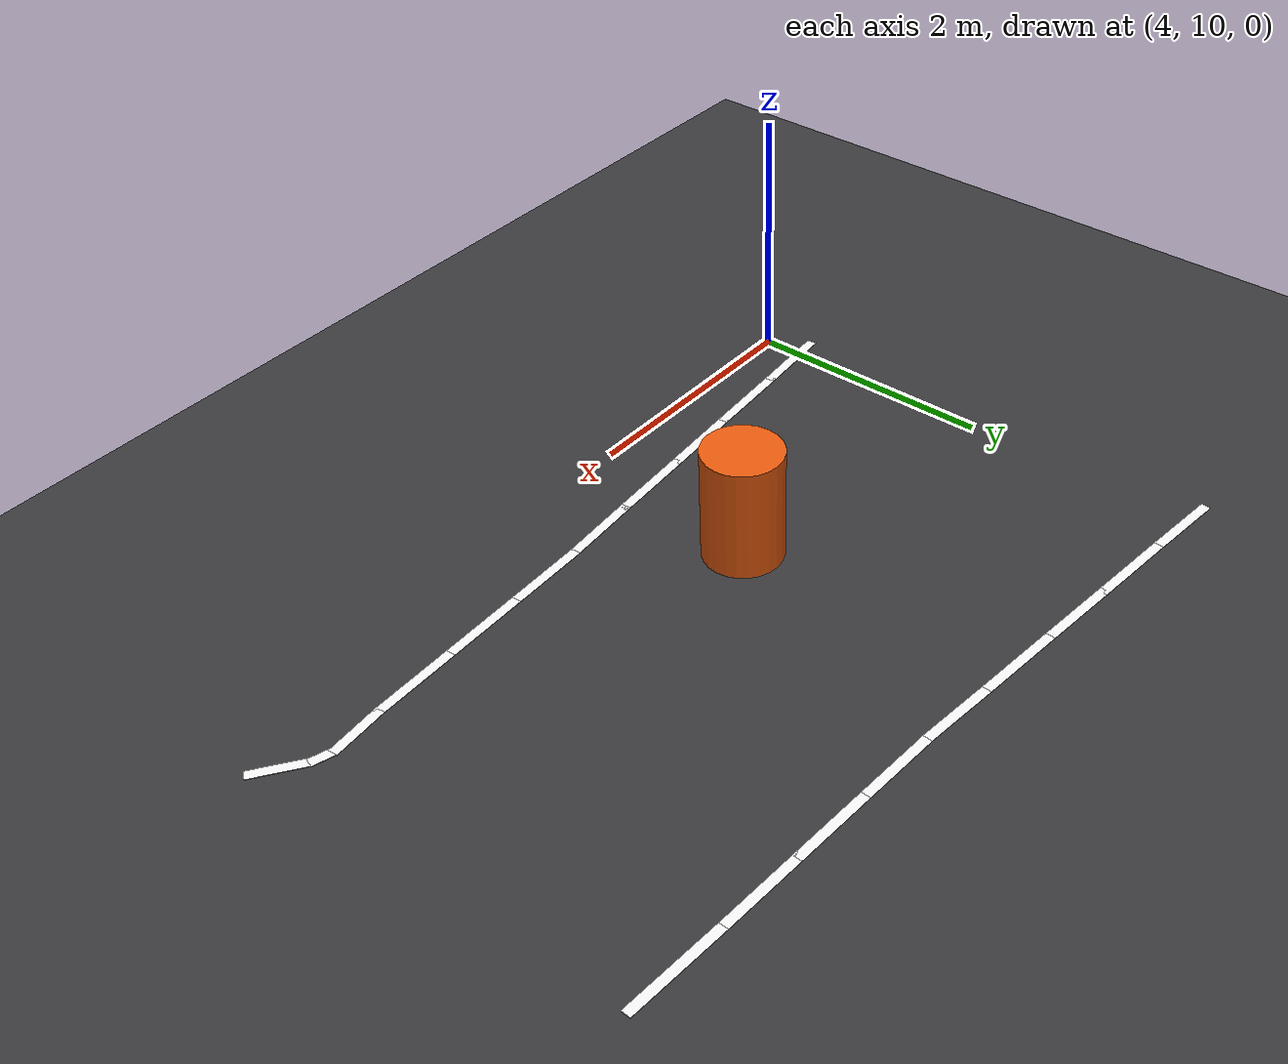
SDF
<sdf version="1.9">
 <world name="igvc_course">
  <model name="ground">
   <static>true</static>
   <pose>1.1853 1.2982 -0.05 0 0 0</pose>
   <link name="link">
    <collision name="collision">
     <geometry><box><size>39.54 33.62 0.1</size></box></geometry>
     <surface><friction><ode><mu>1.0</mu><mu2>1.0</mu2></ode></friction></surface>
    </collision>
    <visual name="visual">
     <geometry><box><size>39.54 33.62 0.1</size></box></geometry>
     <material><ambient>0.18 0.18 0.19 1</ambient><diffuse>0.22 0.22 0.23 1</diffuse></material>
    </visual>
   </link>
  </model>
  <model name="lane_left_37">
   <static>true</static>
   <pose>4.1204 13.8952 0.0025 0 0 -0.09066</pose>
   <link name="link">
    <visual name="visual">
     <geometry><box><size>0.6615 0.0762 0.0050</size></box></geometry>
     <material>
      <ambient>0.95 0.95 0.95 1</ambient>
      <diffuse>0.95 0.95 0.95 1</diffuse>
      <specular>0.1 0.1 0.1 1</specular>
      <emissive>0.55 0.55 0.55 1</emissive>
     </material>
    </visual>
   </link>
  </model>
  <model name="lane_left_38">
   <static>true</static>
   <pose>4.7696 13.8388 0.0025 0 0 -0.08314</pose>
   <link name="link">
    <visual name="visual">
     <geometry><box><size>0.7178 0.0762 0.0050</size></box></geometry>
     <material>
      <ambient>0.95 0.95 0.95 1</ambient>
      <diffuse>0.95 0.95 0.95 1</diffuse>
      <specular>0.1 0.1 0.1 1</specular>
      <emissive>0.55 0.55 0.55 1</emissive>
     </material>
    </visual>
   </link>
  </model>
  <model name="lane_left_39">
   <static>true</static>
   <pose>5.4328 13.7823 0.0025 0 0 -0.08674</pose>
   <link name="link">
    <visual name="visual">
     <geometry><box><size>0.6897 0.0762 0.0050</size></box></geometry>
     <material>
      <ambient>0.95 0.95 0.95 1</ambient>
      <diffuse>0.95 0.95 0.95 1</diffuse>
      <specular>0.1 0.1 0.1 1</specular>
      <emissive>0.55 0.55 0.55 1</emissive>
     </material>
    </visual>
   </link>
  </model>
  <model name="lane_left_40">
   <static>true</static>
   <pose>6.0960 13.7259 0.0025 0 0 -0.08314</pose>
   <link name="link">
    <visual name="visual">
     <geometry><box><size>0.7178 0.0762 0.0050</size></box></geometry>
     <material>
      <ambient>0.95 0.95 0.95 1</ambient>
      <diffuse>0.95 0.95 0.95 1</diffuse>
      <specular>0.1 0.1 0.1 1</specular>
      <emissive>0.55 0.55 0.55 1</emissive>
     </material>
    </visual>
   </link>
  </model>
  <model name="lane_left_41">
   <static>true</static>
   <pose>6.7451 13.6694 0.0025 0 0 -0.09066</pose>
   <link name="link">
    <visual name="visual">
     <geometry><box><size>0.6615 0.0762 0.0050</size></box></geometry>
     <material>
      <ambient>0.95 0.95 0.95 1</ambient>
      <diffuse>0.95 0.95 0.95 1</diffuse>
      <specular>0.1 0.1 0.1 1</specular>
      <emissive>0.55 0.55 0.55 1</emissive>
     </material>
    </visual>
   </link>
  </model>
  <model name="lane_left_42">
   <static>true</static>
   <pose>7.3801 13.6271 0.0025 0 0 -0.04345</pose>
   <link name="link">
    <visual name="visual">
     <geometry><box><size>0.6878 0.0762 0.0050</size></box></geometry>
     <material>
      <ambient>0.95 0.95 0.95 1</ambient>
      <diffuse>0.95 0.95 0.95 1</diffuse>
      <specular>0.1 0.1 0.1 1</specular>
      <emissive>0.55 0.55 0.55 1</emissive>
     </material>
    </visual>
   </link>
  </model>
  <model name="lane_left_43">
   <static>true</static>
   <pose>8.0433 13.5989 0.0025 0 0 -0.04164</pose>
   <link name="link">
    <visual name="visual">
     <geometry><box><size>0.7160 0.0762 0.0050</size></box></geometry>
     <material>
      <ambient>0.95 0.95 0.95 1</ambient>
      <diffuse>0.95 0.95 0.95 1</diffuse>
      <specular>0.1 0.1 0.1 1</specular>
      <emissive>0.55 0.55 0.55 1</emissive>
     </material>
    </visual>
   </link>
  </model>
  <model name="lane_left_44">
   <static>true</static>
   <pose>8.7207 13.5707 0.0025 0 0 -0.04164</pose>
   <link name="link">
    <visual name="visual">
     <geometry><box><size>0.7160 0.0762 0.0050</size></box></geometry>
     <material>
      <ambient>0.95 0.95 0.95 1</ambient>
      <diffuse>0.95 0.95 0.95 1</diffuse>
      <specular>0.1 0.1 0.1 1</specular>
      <emissive>0.55 0.55 0.55 1</emissive>
     </material>
    </visual>
   </link>
  </model>
  <model name="lane_left_45">
   <static>true</static>
   <pose>9.4703 13.5353 0.0025 0 0 -0.05167</pose>
   <link name="link">
    <visual name="visual">
     <geometry><box><size>0.8610 0.0762 0.0050</size></box></geometry>
     <material>
      <ambient>0.95 0.95 0.95 1</ambient>
      <diffuse>0.95 0.95 0.95 1</diffuse>
      <specular>0.1 0.1 0.1 1</specular>
      <emissive>0.55 0.55 0.55 1</emissive>
     </material>
    </visual>
   </link>
  </model>
  <model name="lane_right_37">
   <static>true</static>
   <pose>4.1204 10.3195 0.0025 0 0 0.09066</pose>
   <link name="link">
    <visual name="visual">
     <geometry><box><size>0.6615 0.0762 0.0050</size></box></geometry>
     <material>
      <ambient>0.95 0.95 0.95 1</ambient>
      <diffuse>0.95 0.95 0.95 1</diffuse>
      <specular>0.1 0.1 0.1 1</specular>
      <emissive>0.55 0.55 0.55 1</emissive>
     </material>
    </visual>
   </link>
  </model>
  <model name="lane_right_38">
   <static>true</static>
   <pose>4.7696 10.3759 0.0025 0 0 0.08314</pose>
   <link name="link">
    <visual name="visual">
     <geometry><box><size>0.7178 0.0762 0.0050</size></box></geometry>
     <material>
      <ambient>0.95 0.95 0.95 1</ambient>
      <diffuse>0.95 0.95 0.95 1</diffuse>
      <specular>0.1 0.1 0.1 1</specular>
      <emissive>0.55 0.55 0.55 1</emissive>
     </material>
    </visual>
   </link>
  </model>
  <model name="lane_right_39">
   <static>true</static>
   <pose>5.4328 10.4323 0.0025 0 0 0.08674</pose>
   <link name="link">
    <visual name="visual">
     <geometry><box><size>0.6897 0.0762 0.0050</size></box></geometry>
     <material>
      <ambient>0.95 0.95 0.95 1</ambient>
      <diffuse>0.95 0.95 0.95 1</diffuse>
      <specular>0.1 0.1 0.1 1</specular>
      <emissive>0.55 0.55 0.55 1</emissive>
     </material>
    </visual>
   </link>
  </model>
  <model name="lane_right_40">
   <static>true</static>
   <pose>6.0960 10.4888 0.0025 0 0 0.08314</pose>
   <link name="link">
    <visual name="visual">
     <geometry><box><size>0.7178 0.0762 0.0050</size></box></geometry>
     <material>
      <ambient>0.95 0.95 0.95 1</ambient>
      <diffuse>0.95 0.95 0.95 1</diffuse>
      <specular>0.1 0.1 0.1 1</specular>
      <emissive>0.55 0.55 0.55 1</emissive>
     </material>
    </visual>
   </link>
  </model>
  <model name="lane_right_41">
   <static>true</static>
   <pose>6.7451 10.5452 0.0025 0 0 0.09066</pose>
   <link name="link">
    <visual name="visual">
     <geometry><box><size>0.6615 0.0762 0.0050</size></box></geometry>
     <material>
      <ambient>0.95 0.95 0.95 1</ambient>
      <diffuse>0.95 0.95 0.95 1</diffuse>
      <specular>0.1 0.1 0.1 1</specular>
      <emissive>0.55 0.55 0.55 1</emissive>
     </material>
    </visual>
   </link>
  </model>
  <model name="lane_right_42">
   <static>true</static>
   <pose>7.3801 10.5876 0.0025 0 0 0.04345</pose>
   <link name="link">
    <visual name="visual">
     <geometry><box><size>0.6878 0.0762 0.0050</size></box></geometry>
     <material>
      <ambient>0.95 0.95 0.95 1</ambient>
      <diffuse>0.95 0.95 0.95 1</diffuse>
      <specular>0.1 0.1 0.1 1</specular>
      <emissive>0.55 0.55 0.55 1</emissive>
     </material>
    </visual>
   </link>
  </model>
  <model name="lane_right_43">
   <static>true</static>
   <pose>8.0433 10.6158 0.0025 0 0 0.04164</pose>
   <link name="link">
    <visual name="visual">
     <geometry><box><size>0.7160 0.0762 0.0050</size></box></geometry>
     <material>
      <ambient>0.95 0.95 0.95 1</ambient>
      <diffuse>0.95 0.95 0.95 1</diffuse>
      <specular>0.1 0.1 0.1 1</specular>
      <emissive>0.55 0.55 0.55 1</emissive>
     </material>
    </visual>
   </link>
  </model>
  <model name="lane_right_44">
   <static>true</static>
   <pose>8.7207 10.6440 0.0025 0 0 0.04164</pose>
   <link name="link">
    <visual name="visual">
     <geometry><box><size>0.7160 0.0762 0.0050</size></box></geometry>
     <material>
      <ambient>0.95 0.95 0.95 1</ambient>
      <diffuse>0.95 0.95 0.95 1</diffuse>
      <specular>0.1 0.1 0.1 1</specular>
      <emissive>0.55 0.55 0.55 1</emissive>
     </material>
    </visual>
   </link>
  </model>
  <model name="lane_right_45">
   <static>true</static>
   <pose>9.2693 10.6794 0.0025 0 0 0.10087</pose>
   <link name="link">
    <visual name="visual">
     <geometry><box><size>0.4602 0.0762 0.0050</size></box></geometry>
     <material>
      <ambient>0.95 0.95 0.95 1</ambient>
      <diffuse>0.95 0.95 0.95 1</diffuse>
      <specular>0.1 0.1 0.1 1</specular>
      <emissive>0.55 0.55 0.55 1</emissive>
     </material>
    </visual>
   </link>
  </model>
  <model name="lane_right_46">
   <static>true</static>
   <pose>9.5578 10.6772 0.0025 0 0 -0.28970</pose>
   <link name="link">
    <visual name="visual">
     <geometry><box><size>0.2020 0.0762 0.0050</size></box></geometry>
     <material>
      <ambient>0.95 0.95 0.95 1</ambient>
      <diffuse>0.95 0.95 0.95 1</diffuse>
      <specular>0.1 0.1 0.1 1</specular>
      <emissive>0.55 0.55 0.55 1</emissive>
     </material>
    </visual>
   </link>
  </model>
  <model name="lane_right_47">
   <static>true</static>
   <pose>9.8004 10.5354 0.0025 0 0 -0.62519</pose>
   <link name="link">
    <visual name="visual">
     <geometry><box><size>0.4427 0.0762 0.0050</size></box></geometry>
     <material>
      <ambient>0.95 0.95 0.95 1</ambient>
      <diffuse>0.95 0.95 0.95 1</diffuse>
      <specular>0.1 0.1 0.1 1</specular>
      <emissive>0.55 0.55 0.55 1</emissive>
     </material>
    </visual>
   </link>
  </model>
  <model name="barrel_4">
   <static>true</static>
   <pose>6.2976 11.5231 0.4500 0 0 0</pose>
   <link name="link">
    <collision name="collision">
     <geometry><cylinder><radius>0.3079</radius><length>0.9</length></cylinder></geometry>
    </collision>
    <visual name="visual">
     <geometry><cylinder><radius>0.3079</radius><length>0.9</length></cylinder></geometry>
     <material><ambient>0.9 0.35 0.05 1</ambient><diffuse>0.9 0.35 0.05 1</diffuse></material>
    </visual>
   </link>
  </model>
 </world>
</sdf>
